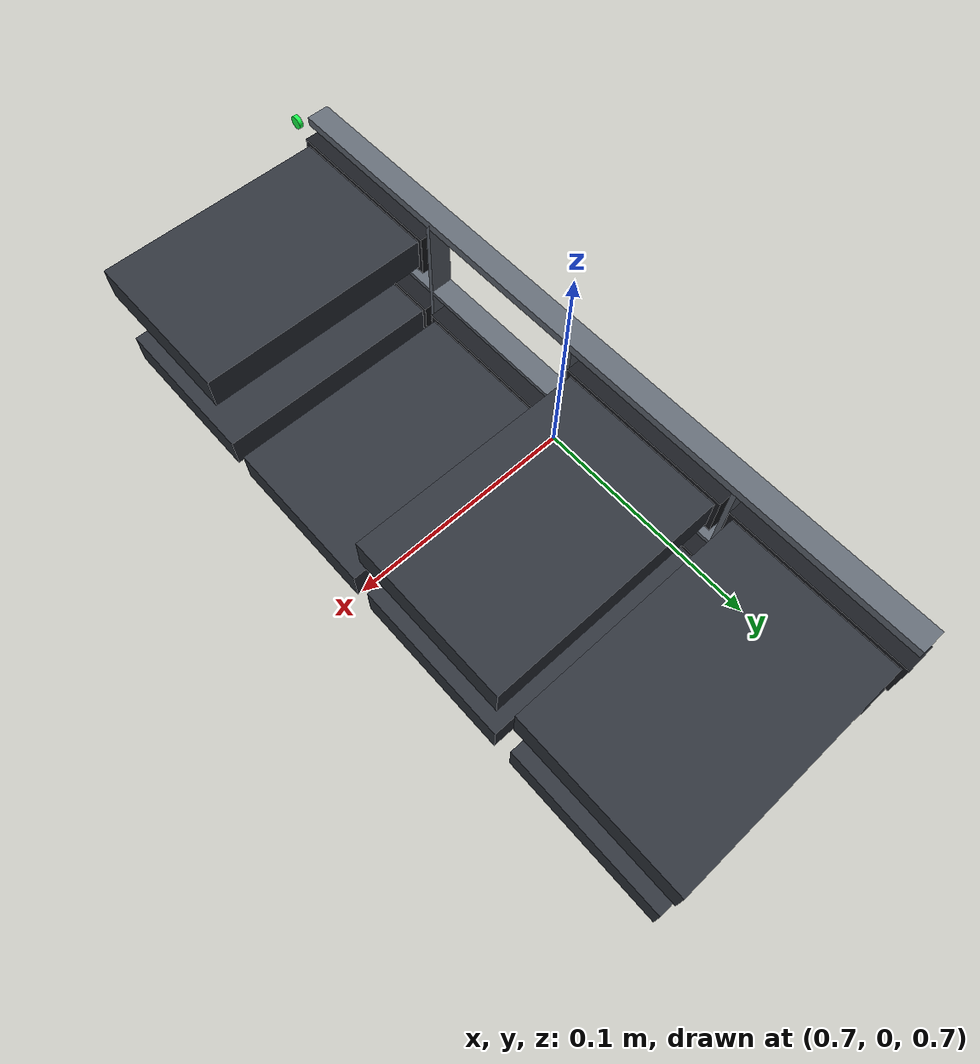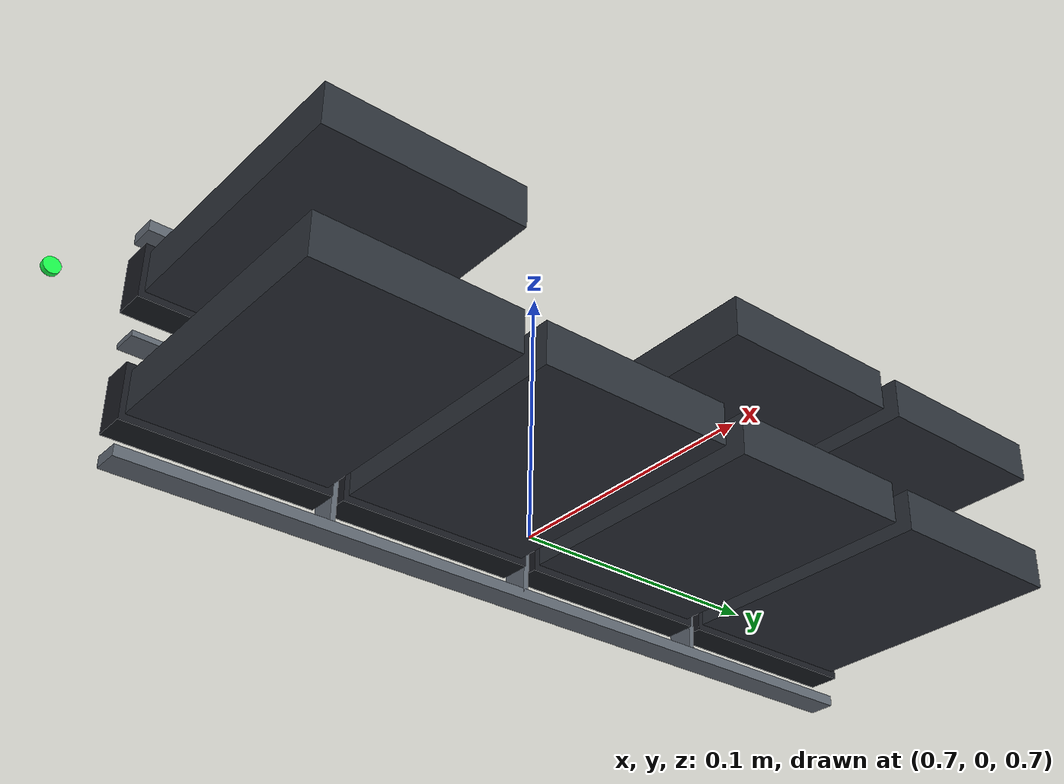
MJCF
<mujoco model="generic_2u_8bay_server">
  <default>
    <default class="server_visual">
      <geom contype="0" conaffinity="0" group="2"/>
    </default>
    <default class="server_collision">
      <geom contype="1" conaffinity="1" group="3" friction="0.8 0.02 0.002"/>
    </default>
  </default>

  <asset>
    <material name="rack_black" rgba="0.10 0.11 0.13 1"/>
    <material name="server_metal" rgba="0.38 0.41 0.45 1" metallic="0.4" roughness="0.55"/>
    <material name="drive_dark" rgba="0.18 0.20 0.23 1" metallic="0.2" roughness="0.5"/>
    <material name="drive_target" rgba="0.10 0.34 0.55 1" metallic="0.15" roughness="0.45"/>
    <material name="drive_new" rgba="0.10 0.48 0.25 1" metallic="0.15" roughness="0.45"/>
    <material name="status_green" rgba="0.1 1 0.3 1" emission="0.6"/>
    <material name="button_orange" rgba="1 0.28 0.04 1" emission="0.15"/>
    <material name="bench_mat" rgba="0.30 0.25 0.20 1" roughness="0.8"/>
    <material name="rack_frame_mat" rgba="0.12 0.14 0.17 1" metallic="0.55" roughness="0.5"/>
  </asset>

  <worldbody>
    <!-- Simplified 19-inch rack frame. Dimensions are scene assumptions, not a vendor CAD model. -->
    <body name="rack_frame">
      <geom name="rack_front_left" type="box" pos="0.675 0.255 0.70" size="0.025 0.025 0.70"
            material="rack_frame_mat" class="server_collision"/>
      <geom name="rack_front_right" type="box" pos="0.675 -0.255 0.70" size="0.025 0.025 0.70"
            material="rack_frame_mat" class="server_collision"/>
      <geom name="rack_rear_left" type="box" pos="1.425 0.255 0.70" size="0.025 0.025 0.70"
            material="rack_frame_mat" class="server_collision"/>
      <geom name="rack_rear_right" type="box" pos="1.425 -0.255 0.70" size="0.025 0.025 0.70"
            material="rack_frame_mat" class="server_collision"/>
      <geom name="rack_top_left" type="box" pos="1.050 0.255 1.375" size="0.375 0.025 0.025"
            material="rack_frame_mat" class="server_collision"/>
      <geom name="rack_top_right" type="box" pos="1.050 -0.255 1.375" size="0.375 0.025 0.025"
            material="rack_frame_mat" class="server_collision"/>
      <geom name="server_support" type="box" pos="1.050 0 0.665" size="0.350 0.215 0.010"
            material="rack_frame_mat" class="server_collision"/>
    </body>

    <!-- 2U server: 434 mm wide, 86.8 mm high, 700.7 mm chassis depth. -->
    <body name="server_chassis" pos="1.050 0 0.720">
      <geom name="server_top" type="box" pos="0 0 0.0414" size="0.35035 0.217 0.002"
            material="server_metal" class="server_collision"/>
      <geom name="server_bottom" type="box" pos="0 0 -0.0414" size="0.35035 0.217 0.002"
            material="server_metal" class="server_collision"/>
      <geom name="server_left" type="box" pos="0 0.215 0" size="0.35035 0.002 0.0434"
            material="server_metal" class="server_collision"/>
      <geom name="server_right" type="box" pos="0 -0.215 0" size="0.35035 0.002 0.0434"
            material="server_metal" class="server_collision"/>
      <geom name="server_back" type="box" pos="0.348 0 0" size="0.002 0.217 0.0434"
            material="server_metal" class="server_collision"/>

      <!-- Front ears and control panels. Bay carrier pitch is a documented simulation assumption. -->
      <geom name="left_ear" type="box" pos="-0.354 0.227 0" size="0.004 0.010 0.0434"
            material="rack_black" class="server_collision"/>
      <geom name="right_ear" type="box" pos="-0.354 -0.227 0" size="0.004 0.010 0.0434"
            material="rack_black" class="server_collision"/>
      <geom name="left_panel" type="box" pos="-0.354 0.178 0" size="0.006 0.025 0.038"
            material="rack_black" class="server_collision"/>
      <geom name="right_panel" type="box" pos="-0.354 -0.178 0" size="0.006 0.025 0.038"
            material="rack_black" class="server_collision"/>
      <geom name="power_led" type="cylinder" pos="-0.361 -0.178 0.018" quat="0.7071 0 0.7071 0"
            size="0.003 0.001" material="status_green" class="server_visual"/>

      <!-- Non-colliding bay frame makes the 4 x 2 carrier layout explicit. -->
      <geom type="box" pos="-0.357 0 0.041" size="0.005 0.153 0.002"
            material="server_metal" class="server_visual"/>
      <geom type="box" pos="-0.357 0 -0.041" size="0.005 0.153 0.002"
            material="server_metal" class="server_visual"/>
      <geom type="box" pos="-0.357 0 0" size="0.005 0.153 0.001"
            material="server_metal" class="server_visual"/>
      <geom type="box" pos="-0.357 0.078 0" size="0.005 0.001 0.041"
            material="server_metal" class="server_visual"/>
      <geom type="box" pos="-0.357 0 0" size="0.005 0.001 0.041"
            material="server_metal" class="server_visual"/>
      <geom type="box" pos="-0.357 -0.078 0" size="0.005 0.001 0.041"
            material="server_metal" class="server_visual"/>

      <!-- Seven fixed carriers; upper-row bay 2 is the manipulable target. -->
      <body name="drive_0_fixed" pos="-0.2998 0.117 0.022">
        <geom type="box" size="0.050225 0.03505 0.0075" material="drive_dark" class="server_visual"/>
        <geom type="box" pos="-0.056 0 0" size="0.006 0.037 0.010" material="rack_black" class="server_visual"/>
      </body>
      <body name="drive_1_fixed" pos="-0.2998 0.039 0.022">
        <geom type="box" size="0.050225 0.03505 0.0075" material="drive_dark" class="server_visual"/>
        <geom type="box" pos="-0.056 0 0" size="0.006 0.037 0.010" material="rack_black" class="server_visual"/>
      </body>

      <body name="target_drive_carrier" pos="-0.2998 -0.039 0.022">
        <joint name="target_drive_slide" type="slide" axis="-1 0 0" range="0 0.16"
               damping="2.5" frictionloss="0.4" armature="0.02"/>
        <inertial mass="0.25" pos="0 0 0"
                  diaginertia="0.00012 0.00024 0.00024"/>
        <!-- The bay is intentionally empty. The good demo drive is held by the
             gripper and will be inserted through this opening. -->
        <body name="target_latch" pos="-0.063 0.027 0">
          <joint name="target_latch_press" type="slide" axis="1 0 0" range="0 0.006"
                 damping="0.08" stiffness="18" springref="0" armature="0.001"/>
          <geom name="target_latch_button" type="cylinder" quat="0.7071 0 0.7071 0"
                size="0.005 0.002" material="button_orange" class="server_collision"/>
        </body>
      </body>

      <!-- High-precision empty bay guide: inner cross-section is only 1 mm
           larger than the demo drive (0.5 mm per side). -->
      <geom name="empty_bay_guide_bottom" type="box"
            pos="-0.2998 -0.039 0.014"
            size="0.10 0.0360 0.001"
            material="server_metal" class="server_collision"/>
      <geom name="empty_bay_guide_top" type="box"
            pos="-0.2998 -0.039 0.030"
            size="0.10 0.0360 0.001"
            material="server_metal" class="server_collision"/>
      <geom name="empty_bay_guide_left" type="box"
            pos="-0.2998 -0.0750 0.022"
            size="0.10 0.001 0.0085"
            material="server_metal" class="server_collision"/>
      <geom name="empty_bay_guide_right" type="box"
            pos="-0.2998 -0.0030 0.022"
            size="0.10 0.001 0.0085"
            material="server_metal" class="server_collision"/>
      <geom name="empty_bay_guide_back" type="box"
            pos="-0.200 -0.039 0.022"
            size="0.001 0.0370 0.0085"
            material="server_metal" class="server_collision"/>

      <body name="drive_3_fixed" pos="-0.2998 -0.117 0.022">
        <geom type="box" size="0.050225 0.03505 0.0075" material="drive_dark" class="server_visual"/>
        <geom type="box" pos="-0.056 0 0" size="0.006 0.037 0.010" material="rack_black" class="server_visual"/>
      </body>
      <body name="drive_4_fixed" pos="-0.2998 0.117 -0.022">
        <geom type="box" size="0.050225 0.03505 0.0075" material="drive_dark" class="server_visual"/>
        <geom type="box" pos="-0.056 0 0" size="0.006 0.037 0.010" material="rack_black" class="server_visual"/>
      </body>
      <body name="drive_5_fixed" pos="-0.2998 0.039 -0.022">
        <geom type="box" size="0.050225 0.03505 0.0075" material="drive_dark" class="server_visual"/>
        <geom type="box" pos="-0.056 0 0" size="0.006 0.037 0.010" material="rack_black" class="server_visual"/>
      </body>
      <body name="drive_6_fixed" pos="-0.2998 -0.039 -0.022">
        <geom type="box" size="0.050225 0.03505 0.0075" material="drive_dark" class="server_visual"/>
        <geom type="box" pos="-0.056 0 0" size="0.006 0.037 0.010" material="rack_black" class="server_visual"/>
      </body>
      <body name="drive_7_fixed" pos="-0.2998 -0.117 -0.022">
        <geom type="box" size="0.050225 0.03505 0.0075" material="drive_dark" class="server_visual"/>
        <geom type="box" pos="-0.056 0 0" size="0.006 0.037 0.010" material="rack_black" class="server_visual"/>
      </body>
    </body>

    <!-- Empty staging table (replacement drive is now held by the gripper). -->
    <body name="staging_bench" pos="0.40 -0.34 0.225">
      <geom name="bench_top" type="box" pos="0 0 0.225" size="0.18 0.16 0.015"
            material="bench_mat" class="server_collision"/>
      <geom type="box" pos="0.14 0 0" size="0.018 0.12 0.21"
            material="bench_mat" class="server_collision"/>
      <geom type="box" pos="-0.14 0 0" size="0.018 0.12 0.21"
            material="bench_mat" class="server_collision"/>
    </body>
  </worldbody>

  <actuator>
    <!-- Mechanism actuators expose interfaces only; no replacement sequence is encoded here. -->
    <position name="target_drive_slide_actuator" joint="target_drive_slide"
              kp="120" kv="12" ctrlrange="0 0.16" forcerange="-40 40"/>
    <position name="target_latch_actuator" joint="target_latch_press"
              kp="80" kv="3" ctrlrange="0 0.006" forcerange="-20 20"/>
  </actuator>
</mujoco>
